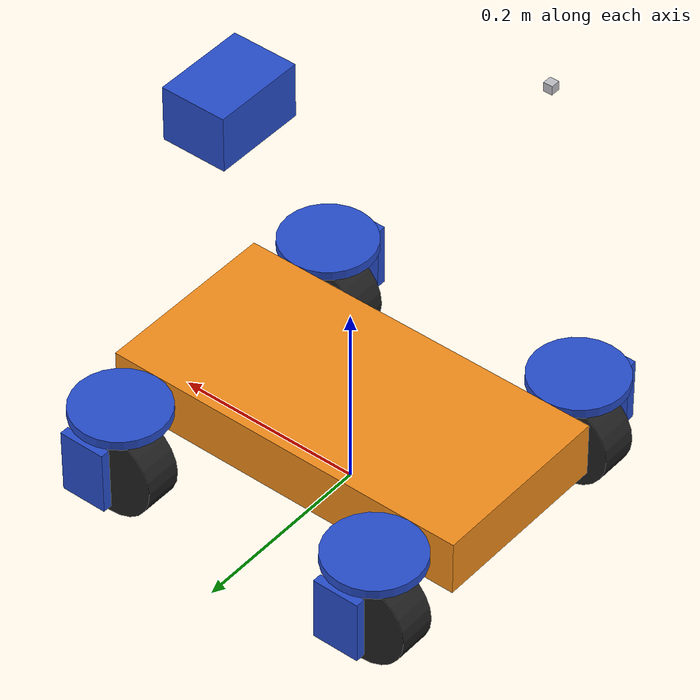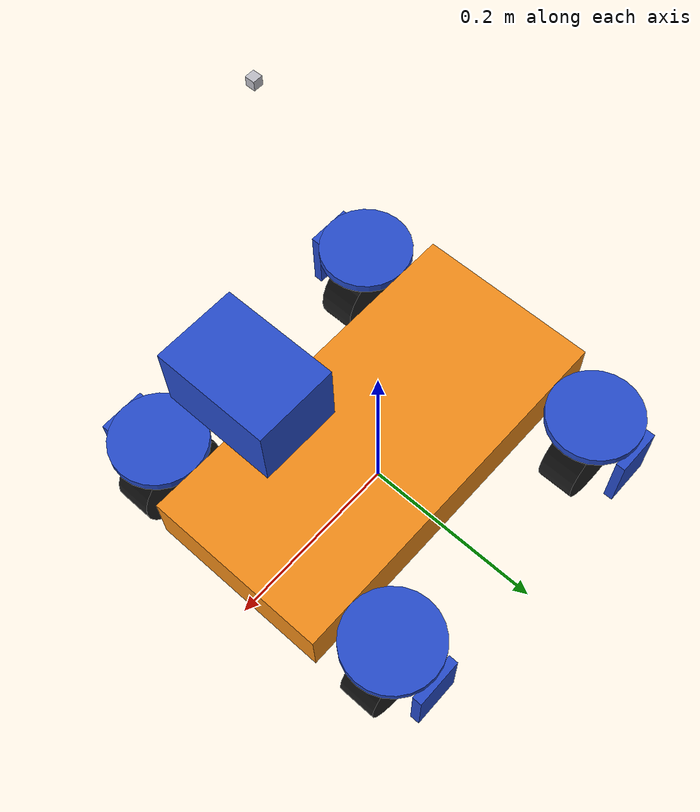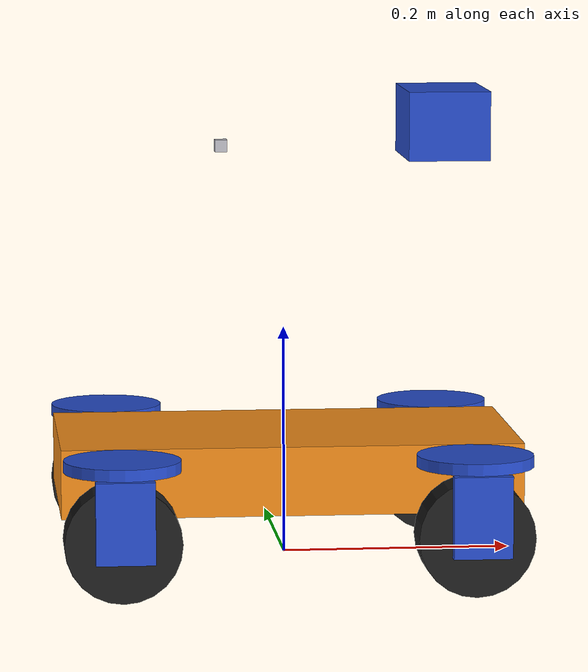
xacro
<?xml version="1.0" ?>
<robot name="zinger" xmlns:xacro="http://www.ros.org/wiki/xacro">

    <!-- CONSTANTS -->
    <!-- Math -->
    <xacro:property name="PI" value="3.1415926535897931"/>

    <!-- ARGUMENTS -->
    <xacro:arg name="is_simulation" default="false" />
    <xacro:arg name="use_fake_hardware" default="false" />
    <xacro:arg name="fake_sensor_commands" default="false" />
    <xacro:arg name="chassis_version" default="v1" />

    <!-- Chassis dimensions -->
    <xacro:property name="chassis_mass" value="1.0" /> <!-- arbitrary value for base mass -->
    <xacro:property name="chassis_length" value="0.40" />
    <xacro:property name="chassis_width" value="0.2" />
    <xacro:property name="chassis_height" value="0.06" />

    <!-- Suspension dimensions -->
    <xacro:property name="wheel_offset" value="0.01" />
    <xacro:property name="steering_mass" value="0.2" />
    <xacro:property name="steering_radius" value="0.05" />
    <xacro:property name="steering_thickness" value="0.01" />

    <!-- Wheel dimensions -->
    <xacro:property name="wheel_mass" value="0.2" />
    <xacro:property name="wheel_radius" value="0.05" />
    <xacro:property name="wheel_width" value="0.04" />

    <xacro:property name="front_x_reflect" value="1" />
    <xacro:property name="rear_x_reflect" value="-1" />

    <xacro:property name="left_y_reflect" value="1" />
    <xacro:property name="right_y_reflect" value="-1" />

    <!-- INCLUDES -->

    <xacro:include filename="$(find omni_bot2)/urdf/materials.xacro" />
    <xacro:include filename="$(find omni_bot2)/urdf/macros.xacro" />

    <xacro:if value="$(arg is_simulation)">
    <xacro:include filename="$(find omni_bot2)/urdf/gazebo.xacro" />
    </xacro:if>

    <!-- MODEL -->

    <!--
      An empty base footprint that describes the origin of the robot on the ground
    -->
    <link name="base_footprint">
    </link>

    <!--
      An empty base link that describes the origin of the robot at the c.o.g of the chassis
    -->
    <joint name="joint_base_to_footprint" type="fixed">
        <origin rpy="0 0 0" xyz="0 0 ${wheel_radius + 0.5 * chassis_height}"/>
        <parent link="base_footprint"/>
        <child link="base_link"/>
    </joint>
    <link name="base_link">
    </link>

    <!--
        A box that pretends to be the ground. Used for testing that the scuttle model has been assembled correctly.
    -->

    <!-- The chassis of zinger -->
    <joint name="chassis_joint" type="fixed">
        <origin rpy="0 0 0" xyz="0.0 0 0.0"/>
        <parent link="base_link"/>
        <child link="chassis_link"/>
    </joint>

    <link name="chassis_link">
        <inertial>
            <origin rpy="0 0 0" xyz="0 0 0.0"/>
            <mass value="${chassis_mass}"/>
            <inertia
                ixx="${chassis_mass / 12.0 * (chassis_width * chassis_width + chassis_height * chassis_height)}"
                ixy="0"
                ixz="0"
                iyy="${chassis_mass / 12.0 * (chassis_length * chassis_length + chassis_height * chassis_height)}"
                iyz="0"
                izz="${chassis_mass / 12.0 * (chassis_length * chassis_length + chassis_width * chassis_width)}"/>
        </inertial>
        <visual>
            <origin rpy="0 0 0" xyz="0 0 0.0"/>
            <geometry>
                <box size="${chassis_length} ${chassis_width} ${chassis_height}" />
            </geometry>
            <material name="orange"/>
        </visual>
        <collision>
            <origin rpy="0 0 0" xyz="0 0 0.0"/>
            <geometry>
                <box size="${chassis_length} ${chassis_width} ${chassis_height}" />
            </geometry>
        </collision>
    </link>

    <!--
        Left front wheel assembly
    -->
    <xacro:drive_module_assembly
        name="left_front"
        chassis_length="${chassis_length}"
        chassis_width="${chassis_width}"
        chassis_height="${chassis_height}"
        wheel_mass="${wheel_mass}"
        wheel_radius="${wheel_radius}"
        wheel_width="${wheel_width}"
        steering_mass="${steering_mass}"
        steering_radius="${steering_radius}"
        steering_thickness="${steering_thickness}"
        offset="${wheel_offset}"
        x_reflect="${front_x_reflect}"
        y_reflect="${left_y_reflect}" />

    <!--
        Left rear wheel assembly
    -->
    <xacro:drive_module_assembly
        name="left_rear"
        chassis_length="${chassis_length}"
        chassis_width="${chassis_width}"
        chassis_height="${chassis_height}"
        wheel_mass="${wheel_mass}"
        wheel_radius="${wheel_radius}"
        wheel_width="${wheel_width}"
        steering_mass="${steering_mass}"
        steering_radius="${steering_radius}"
        steering_thickness="${steering_thickness}"
        offset="${wheel_offset}"
        x_reflect="${rear_x_reflect}"
        y_reflect="${left_y_reflect}" />

    <!--
        Right rear wheel assembly
    -->
    <xacro:drive_module_assembly
        name="right_rear"
        chassis_length="${chassis_length}"
        chassis_width="${chassis_width}"
        chassis_height="${chassis_height}"
        wheel_mass="${wheel_mass}"
        wheel_radius="${wheel_radius}"
        wheel_width="${wheel_width}"
        steering_mass="${steering_mass}"
        steering_radius="${steering_radius}"
        steering_thickness="${steering_thickness}"
        offset="${wheel_offset}"
        x_reflect="${rear_x_reflect}"
        y_reflect="${right_y_reflect}" />

    <!--
        Right front wheel assembly
    -->
    <xacro:drive_module_assembly
        name="right_front"
        chassis_length="${chassis_length}"
        chassis_width="${chassis_width}"
        chassis_height="${chassis_height}"
        wheel_mass="${wheel_mass}"
        wheel_radius="${wheel_radius}"
        wheel_width="${wheel_width}"
        steering_mass="${steering_mass}"
        steering_radius="${steering_radius}"
        steering_thickness="${steering_thickness}"
        offset="${wheel_offset}"
        x_reflect="${front_x_reflect}"
        y_reflect="${right_y_reflect}" />

    <ros2_control name="ZingerJointControl" type="system">
        <xacro:if value="$(arg is_simulation)">
            <hardware>
                <plugin>ign_ros2_control/IgnitionSystem</plugin>
            </hardware>
        </xacro:if>
        <xacro:unless value="$(arg is_simulation)">
            <xacro:if value="$(arg use_fake_hardware)">
                <hardware>
                    <plugin>mock_components/GenericSystem</plugin>
                </hardware>
            </xacro:if>
            <xacro:unless value="$(arg use_fake_hardware)">
                <!-- USE REAL HARDWARE HERE -->
                <hardware>
                </hardware>
            </xacro:unless>
        </xacro:unless>
        <xacro:steering_module_controller name="left_front" />
        <xacro:steering_module_controller name="left_rear" />
        <xacro:steering_module_controller name="right_rear" />
        <xacro:steering_module_controller name="right_front" />
    </ros2_control>

    <!-- Sensors -->

    <!-- IMU -->
    <xacro:sensor_imu name="imu" parent_link="chassis_link">
        <origin rpy="0 0 0" xyz="0.0 0.0 0.0"/>
    </xacro:sensor_imu>

    <!-- LIDAR -->
    <xacro:sensor_lidar
        name="scanner_link"
        parent_link="chassis_link"
        chassis_top_relative_height="0.3" />

    <!-- front camera -->
    <xacro:camera
        name="front_camera_link"
        parent_link="chassis_link"
        chassis_top_relative_height="0.3" />

        <!-- rear camera -->
    <xacro:camera
        name="rear_camera_link"
        parent_link="chassis_link"
        chassis_top_relative_height="0.3" />
    <!-- Sonar -->

    <!-- IR -->

    <!-- Cliff sensors -->
</robot>

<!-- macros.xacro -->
<robot name="zinger" xmlns:xacro="http://www.ros.org/wiki/xacro" >

    <xacro:macro name="wheel_assembly" params="name mass radius width offset">
        <joint name="joint_steering_to_wheel_${name}" type="continuous">
            <origin rpy="0 0 0" xyz="0 0 ${-1 * (radius + offset)}"/>
            <parent link="link_steering_${name}"/>
            <child link="link_wheel_${name}"/>
            <axis xyz="0.0 1.0 0.0"/>
        </joint>

        <link name="link_wheel_${name}">
            <inertial>
                <origin xyz="0 0 0" rpy="${PI/2} 0 0" />
                <mass value="${mass}"/>
                <inertia
                    ixx="${(mass/12) * (3*radius*radius + width*width)}"
                    ixy="0"
                    ixz="0"
                    iyy="${(mass/12) * (3*radius*radius + width*width)}"
                    iyz="0"
                    izz="${(mass/2) * (radius*radius)}"/>
            </inertial>
            <visual>
                <origin rpy="${PI/2} 0 0" xyz="0 0 0"/>
                <geometry>
                    <cylinder length="${width}" radius="${radius}" />
                </geometry>
                <material name="black"/>
            </visual>
            <collision>
                <origin rpy="${PI/2} 0 0" xyz="0 0 0"/>
                <geometry>
                    <cylinder length="${width}" radius="${radius}" />
                </geometry>
            </collision>
        </link>
    </xacro:macro>

    <xacro:macro name="steering_assembly" params="name mass chassis_length chassis_width chassis_height steering_radius thickness wheel_radius offset x_reflect y_reflect">
        <joint name="joint_chassis_to_steering_${name}" type="continuous">
            <origin rpy="0 0 0" xyz="${x_reflect * (0.5 * chassis_length - steering_radius)} ${y_reflect * (0.5 * chassis_width + steering_radius)} ${0.5 * chassis_height - 0.5 * thickness}"/>
            <parent link="chassis_link"/>
            <child link="link_steering_${name}"/>
            <axis xyz="0.0 0.0 1.0"/>
        </joint>

        <link name="link_steering_${name}">
            <inertial>
                <origin xyz="0 0 0" rpy="0 0 0" />
                <mass value="${mass}"/>
                <inertia
                    ixx="${(mass/12) * (3*steering_radius*steering_radius + thickness*thickness)}"
                    ixy="0"
                    ixz="0"
                    iyy="${(mass/12) * (3*steering_radius*steering_radius + thickness*thickness)}"
                    iyz="0"
                    izz="${(mass/2) * (steering_radius*steering_radius)}"/>
            </inertial>

            <visual>
                <origin rpy="0 0 0" xyz="0 0 0"/>
                <geometry>
                    <cylinder length="${thickness}" radius="${steering_radius}" />
                </geometry>
                <material name="blue"/>
            </visual>
            <collision>
                <origin rpy="0 0 0" xyz="0 0 0"/>
                <geometry>
                    <cylinder length="${thickness}" radius="${steering_radius}" />
                </geometry>
            </collision>

            <visual>
                <origin rpy="0 0 0" xyz="0 ${y_reflect * wheel_radius} ${-1 * 0.5 * (thickness + wheel_radius + 2 * offset)}"/>
                <geometry>
                    <box size="${wheel_radius} 0.01 ${wheel_radius + 2 * offset}" />
                </geometry>
                <material name="blue"/>
            </visual>
            <collision>
                <origin rpy="0 0 0" xyz="0 ${y_reflect * wheel_radius} ${-1 * 0.5 * (thickness + wheel_radius + 2 * offset)}"/>
                <geometry>
                    <box size="${wheel_radius} 0.01 ${wheel_radius + 2 * offset}" />
                </geometry>
            </collision>
        </link>
    </xacro:macro>

    <xacro:macro name="drive_module_assembly" params="name chassis_length chassis_width chassis_height wheel_mass wheel_radius wheel_width steering_mass steering_radius steering_thickness offset x_reflect y_reflect">
        <xacro:steering_assembly
            name="${name}"
            mass="${steering_mass}"
            chassis_length="${chassis_length}"
            chassis_width="${chassis_width}"
            chassis_height="${chassis_height}"
            steering_radius="${steering_radius}"
            thickness="${steering_thickness}"
            wheel_radius="${wheel_radius}"
            offset="${offset}"
            x_reflect="${x_reflect}"
            y_reflect="${y_reflect}"/>
        <xacro:wheel_assembly
            name="${name}"
            mass="${wheel_mass}"
            radius="${wheel_radius}"
            width="${wheel_width}"
            offset="${offset + 0.5 * steering_thickness}"/>
    </xacro:macro>

    <!-- CONTROLLERS -->
    <xacro:macro name="steering_module_controller" params="name">
        <joint name="joint_chassis_to_steering_${name}">
            <command_interface name="position">
                <param name="min">-${2 * PI}</param>
                <param name="max">${2 * PI}</param>
            </command_interface>
            <state_interface name="position"/>
            <state_interface name="velocity"/>
            <state_interface name="acceleration"/>
        </joint>
        <joint name="joint_steering_to_wheel_${name}">
            <command_interface name="velocity">
                <param name="min">-1</param>
                <param name="max">1</param>
            </command_interface>
            <state_interface name="position"/>
            <state_interface name="velocity"/>
            <state_interface name="acceleration"/>
        </joint>
    </xacro:macro>

    <!-- SENSORS -->
    <!-- IMU sensor -->
    <xacro:macro name="sensor_imu" params="name parent_link *origin">
        <xacro:property name="mass"     value="0.01"/>
        <xacro:property name="length_x" value="0.01" />
        <xacro:property name="length_y" value="0.01" />
        <xacro:property name="length_z" value="0.01" />

        <xacro:property name="collision_x_offset" value="0.005" />
        <xacro:property name="collision_y_offset" value="0.005" />
        <xacro:property name="collision_z_offset" value="${0.5 * length_z}" />

        <joint name="joint_imu_${name}" type="fixed">
            <xacro:insert_block name="origin"/>
            <parent link="${parent_link}"/>
            <child link="link_${name}"/>
        </joint>

        <link name="link_${name}">
            <visual>
                <origin xyz="${collision_x_offset} ${collision_y_offset} ${collision_z_offset}"/>
                <geometry>
                    <box size="${length_x} ${length_y} ${length_z}"/>
                </geometry>
            </visual>
            <collision>
                <origin xyz="${collision_x_offset} ${collision_y_offset} ${collision_z_offset}"/>
                <geometry>
                    <box size="${length_x} ${length_y} ${length_z}"/>
                </geometry>
            </collision>
            <inertial>
                <mass value="${mass}" />
                <xacro:insert_block name="origin"/>
                <inertia
                    ixx="${(1/12) * mass * (length_y*length_y + length_z*length_z)}"
                    ixy="0.0"
                    ixz="0.0"
                    iyy="${(1/12) * mass * (length_x*length_x + length_z*length_z)}"
                    iyz="0.0"
                    izz="${(1/12) * mass * (length_x*length_x + length_y*length_y)}" />
            </inertial>
        </link>
    </xacro:macro>

    <!-- Lidar sensor -->
    <xacro:macro name="sensor_lidar" params="name parent_link chassis_top_relative_height">

        <xacro:property name="mass"     value="0.17"/>
        <xacro:property name="length_x" value="0.071" />
        <xacro:property name="length_y" value="0.10" />
        <xacro:property name="length_z" value="0.06" />

        <xacro:property name="collision_x_offset" value="0" />
        <xacro:property name="collision_y_offset" value="0" />
        <xacro:property name="collision_z_offset" value="${chassis_top_relative_height}" />

        <joint name="joint_body_to_sensor_lidar_${name}" type="fixed">
            <parent link="${parent_link}"/>
            <child link="scanner_link"/>
            <origin rpy="0 0 0" xyz="0.14 0 ${chassis_top_relative_height}"/>
        </joint>

        <link name="scanner_link">
            <visual>
                <origin rpy="0 0 0" xyz="0.0 0 0"/>
                <geometry>
                    <box size="${length_x} ${length_y} ${length_z}"/>
                </geometry>
                <material name="blue"/>
            </visual>
            <collision>
                <origin rpy="0 0 0" xyz="0.0 0 0"/>
                <geometry>
                    <box size="${length_x} ${length_y} ${length_z}"/>
                </geometry>
            </collision>
            <inertial>
                <mass value="${mass}" />
                <origin rpy="0 0 0" xyz="0.0 0 0"/>
                <inertia
                    ixx="${(1/12) * mass * (length_y*length_y + length_z*length_z)}"
                    ixy="0.0"
                    ixz="0.0"
                    iyy="${(1/12) * mass * (length_x*length_x + length_z*length_z)}"
                    iyz="0.0"
                    izz="${(1/12) * mass * (length_x*length_x + length_y*length_y)}" />
            </inertial>
        </link>
    </xacro:macro>

    <!-- camera -->
    <xacro:macro name="camera" params="name parent_link chassis_top_relative_height">

        <xacro:property name="mass"     value="0.17"/>
        <xacro:property name="length_x" value="0.01" />
        <xacro:property name="length_y" value="0.01" />
        <xacro:property name="length_z" value="0.01" />

        <xacro:property name="collision_x_offset" value="-0.07" />
        <xacro:property name="collision_y_offset" value="-0.2" />
        <xacro:property name="collision_z_offset" value="${chassis_top_relative_height}" />

        <joint name="joint_${name}" type="fixed">
            <parent link="${parent_link}"/>
            <child link="${name}"/>
            <origin rpy="0 0 0" xyz="${collision_x_offset} ${collision_y_offset} ${collision_z_offset}"/>
        </joint>

        <link name="${name}">
            <visual>
                <origin rpy="0 0 0" xyz="0.0 0 0"/>
                <geometry>
                    <box size="${length_x} ${length_y} ${length_z}"/>
                </geometry>
                <material name="silver"/>
            </visual>
            <collision>
                <origin rpy="0 0 0" xyz="0.0 0 0"/>
                <geometry>
                    <box size="${length_x} ${length_y} ${length_z}"/>
                </geometry>
            </collision>
            <inertial>
                <mass value="${mass}" />
                <origin rpy="0 0 0" xyz="0.0 0 ${0.5 * length_z}"/>
                <inertia
                    ixx="${(1/12) * mass * (length_y*length_y + length_z*length_z)}"
                    ixy="0.0"
                    ixz="0.0"
                    iyy="${(1/12) * mass * (length_x*length_x + length_z*length_z)}"
                    iyz="0.0"
                    izz="${(1/12) * mass * (length_x*length_x + length_y*length_y)}" />
            </inertial>
        </link>
    </xacro:macro>
    <!-- Sonar sensor -->

    <!-- IR sensor -->

</robot>
